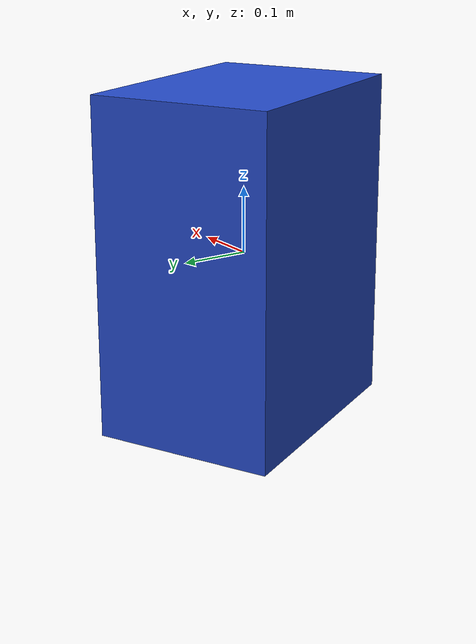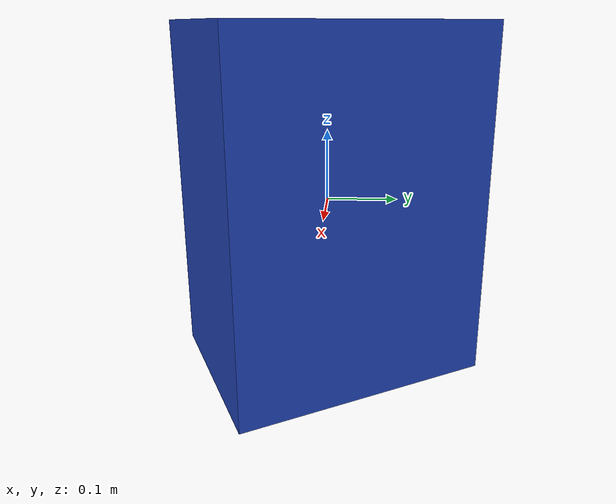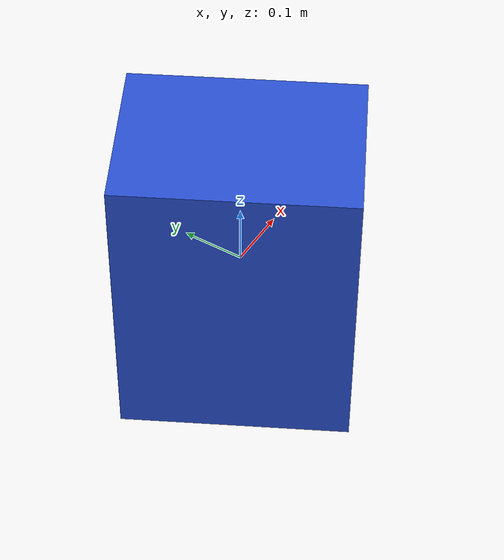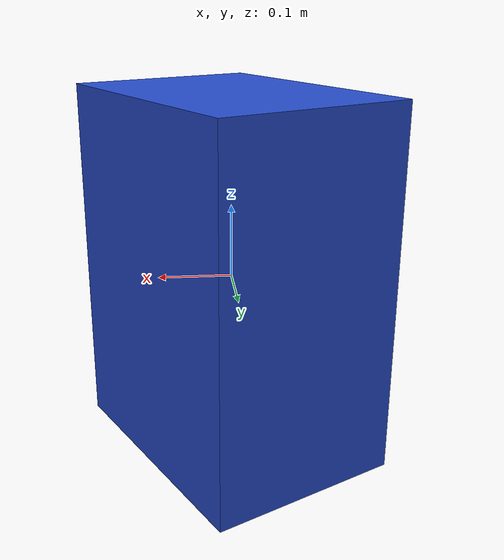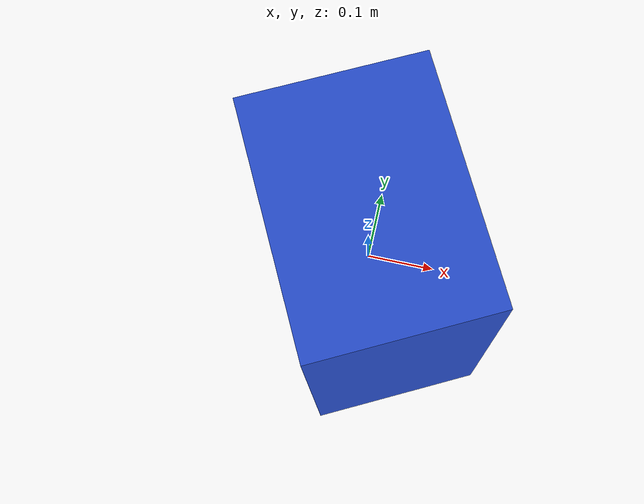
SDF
<sdf version="1.6"><model name="model_1"><link name="link"><pose>0 0 0 0 0 2.0515653342990454</pose><gravity>true</gravity><static>true</static><inertial><mass>1.0</mass><inertia><ixx>0.16666</ixx><ixy>0</ixy><ixz>0</ixz><iyy>0.16666</iyy><iyz>0</iyz><izz>0.16666</izz></inertia></inertial><collision name="collision"><geometry><box><size>0.3676815961360391 0.2686722920541112 0.5</size></box></geometry></collision><visual name="visual"><geometry><box><size>0.3676815961360391 0.2686722920541112 0.5</size></box></geometry><material><script><name>Gazebo/Blue</name><uri>file://media/materials/scripts/gazebo.material</uri></script></material></visual></link></model></sdf>
